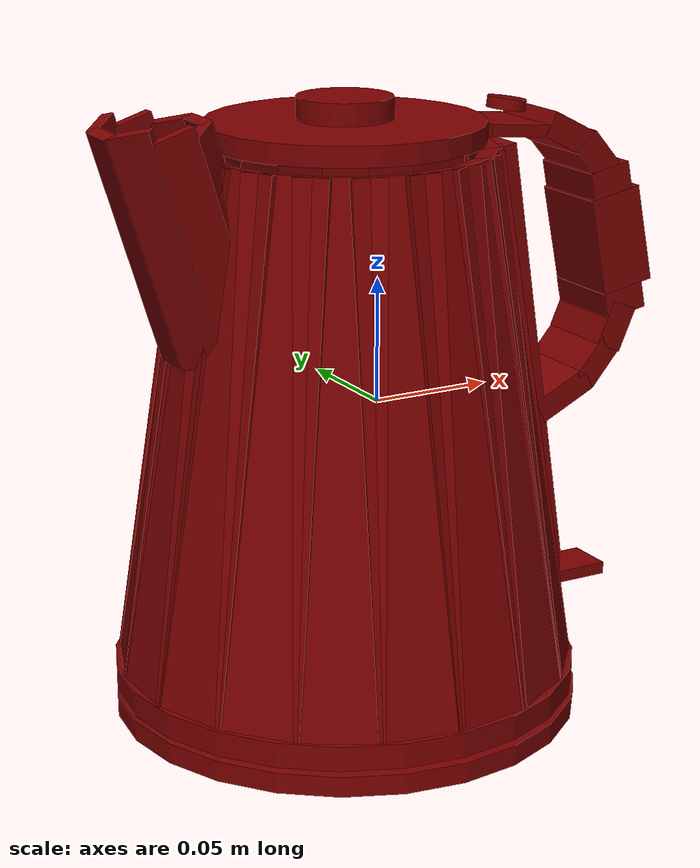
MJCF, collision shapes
<?xml version='1.0' encoding='UTF-8'?>
<mujoco model="model">
  <compiler angle="radian"/>
  <asset>
    <mesh file="visuals/Body001.obj" name="Body001_vis"/>
    <mesh file="visuals/Button001.obj" name="Button001_vis"/>
    <mesh file="visuals/Handle001.obj" name="Handle001_vis"/>
    <mesh file="visuals/Lever001.obj" name="Lever001_vis"/>
    <mesh file="visuals/Lid001.obj" name="Lid001_vis"/>
    <texture file="visuals/T_BC001.png" name="Body001_material" type="2d"/>
    <material name="Body001_material" rgba="1 1 1 1.0" texture="Body001_material" shininess="0.5" specular="0.3103448502657381"/>
    <texture file="visuals/T_BC001.png" name="Handle001_material" type="2d"/>
    <material name="Handle001_material" rgba="1 1 1 1.0" texture="Handle001_material" shininess="0.5" specular="0.3103448502657381"/>
    <texture file="visuals/T_BC001.png" name="Button001_material" type="2d"/>
    <material name="Button001_material" rgba="1 1 1 1.0" texture="Button001_material" shininess="0.5" specular="0.3103448502657381"/>
    <texture file="visuals/T_BC001.png" name="Lever001_material" type="2d"/>
    <material name="Lever001_material" rgba="1 1 1 1.0" texture="Lever001_material" shininess="0.5" specular="0.3103448502657381"/>
    <texture file="visuals/T_BC001.png" name="Lid001_material" type="2d"/>
    <material name="Lid001_material" rgba="1 1 1 1.0" texture="Lid001_material" shininess="0.5" specular="0.3103448502657381"/>
  </asset>
  <default>
    <default class="visual">
      <geom conaffinity="0" contype="0" group="1" type="mesh"/>
    </default>
    <default class="collision">
      <geom group="0" rgba="0.5 0 0 0.5"/>
    </default>
    <default class="spawn">
      <geom group="0" rgba="1 1 1 0.5" contype="0" conaffinity="0"/>
      <site group="0" rgba="1 1 1 0.5"/>
    </default>
    <default class="region">
      <geom group="1" conaffinity="0" contype="0" rgba="0 1 0 0"/>
    </default>
  </default>
  <worldbody>
    <body>
      <body name="object">
        <geom mesh="Body001_vis" type="mesh" solimp="0.998 0.998 0.001" solref="0.001 1" density="100" friction="0.95 0.3 0.1" class="visual" material="Body001_material"/>
        <geom class="collision" type="cylinder" pos="-0.01457547303289175 0.0 -0.11908295750617981" size="0.0935683622956276 0.004105851054191589" quat="1.0 0.0 0.0 0.0"/>
        <body name="Handle001">
          <joint axis="0.0 0.0 1.0" pos="0.0 -1.4901161193847656e-08 0.00021788477897644043" limited="true" name="Handle001_joint" range="0.0 0.1" type="slide" damping="1" frictionloss="1" armature=".01" stiffness="0.05"/>
          <geom mesh="Handle001_vis" type="mesh" solimp="0.998 0.998 0.001" solref="0.001 1" density="100" friction="0.95 0.3 0.1" class="visual" material="Handle001_material"/>
          <geom class="collision" type="cylinder" pos="-0.014966634102165699 0.00020970584591850638 -0.10780871659517288" size="0.09313647449016571 0.005019483156502247" quat="1.0 0.0 0.0 0.0"/>
          <geom class="collision" type="box" pos="0.061717238277196884 3.1286875312730444e-09 0.01329786702990532" size="0.00381870218552649 0.01719263382256031 0.08845608681440353" quat="0.9970765113830566 6.419643119603437e-16 -0.07640993595123291 -1.0266349548260223e-08"/>
          <geom class="collision" type="box" pos="0.05137529596686363 -0.02415994368493557 -0.0005465298891067505" size="0.0038187019526958466 0.01719263195991516 0.10453208535909653" quat="0.9819286465644836 -0.013268446549773216 -0.0752490982413292 -0.1731405258178711"/>
          <geom class="collision" type="box" pos="0.039039477705955505 -0.045380547642707825 -0.0005465298891067505" size="0.00381870218552649 0.01719263382256031 0.10453208535909653" quat="0.9369454383850098 -0.026133734732866287 -0.07180185616016388 -0.3410201966762543"/>
          <geom class="collision" type="box" pos="0.020189721137285233 -0.06110229715704918 -0.0005465298891067505" size="0.00381870218552649 0.01719263195991516 0.10453208535909653" quat="0.8634935617446899 -0.038204967975616455 -0.06617294996976852 -0.4985382556915283"/>
          <geom class="collision" type="box" pos="-0.0029004020616412163 -0.06942891329526901 -0.0005465298891067505" size="0.003818702418357134 0.01719263382256031 0.10453209280967712" quat="0.7638048529624939 -0.049115367233753204 -0.05853341519832611 -0.640908420085907"/>
          <geom class="collision" type="box" pos="-0.027445897459983826 -0.06935609877109528 -0.0005465298891067505" size="0.003818702418357134 0.01719263382256031 0.10453208535909653" quat="0.640908420085907 -0.058533407747745514 -0.04911535978317261 -0.7638049125671387"/>
          <geom class="collision" type="box" pos="-0.05048619583249092 -0.06089260056614876 -0.0005465298891067505" size="0.00381870218552649 0.01719263382256031 0.10453209280967712" quat="0.4985383152961731 -0.06617294996976852 -0.03820497915148735 -0.8634935021400452"/>
          <geom class="collision" type="box" pos="-0.06924232840538025 -0.045059267431497574 -0.0005465298891067505" size="0.00381870218552649 0.01719263382256031 0.10453208535909653" quat="0.34102025628089905 -0.07180184870958328 -0.026133734732866287 -0.9369454383850098"/>
          <geom class="collision" type="box" pos="-0.08145199716091156 -0.02376583404839039 -0.0005465298891067505" size="0.0038187019526958466 0.01719263382256031 0.10453208535909653" quat="0.17314055562019348 -0.07524910569190979 -0.01326845120638609 -0.9819286465644836"/>
          <geom class="collision" type="box" pos="-0.08564256131649017 0.00041939830407500267 -0.0005465298891067505" size="0.00381870218552649 0.01719263382256031 0.10453208535909653" quat="7.533783019653129e-08 -0.07640992850065231 -6.56018928069102e-09 -0.9970765113830566"/>
          <geom class="collision" type="box" pos="-0.08130855858325958 0.024579355493187904 -0.0005465298891067505" size="0.0038187019526958466 0.01719263382256031 0.10453209280967712" quat="0.17314055562019348 0.07524911314249039 -0.01326845120638609 0.9819286465644836"/>
          <geom class="collision" type="box" pos="-0.06897273659706116 0.04579996317625046 -0.0005465298891067505" size="0.00381870218552649 0.01719263382256031 0.10453208535909653" quat="0.34102025628089905 0.07180184125900269 -0.026133736595511436 0.9369454383850098"/>
          <geom class="collision" type="box" pos="-0.050122980028390884 0.061521708965301514 -0.0005465298891067505" size="0.00381870218552649 0.01719263382256031 0.10453209280967712" quat="0.49853822588920593 0.06617295742034912 -0.03820497542619705 0.8634935617446899"/>
          <geom class="collision" type="box" pos="-0.02703285962343216 0.06984832882881165 -0.0005465298891067505" size="0.003818702418357134 0.01719263382256031 0.10453208535909653" quat="0.640908420085907 0.058533407747745514 -0.049115363508462906 0.7638049125671387"/>
          <geom class="collision" type="box" pos="-0.0024873707443475723 0.06977549940347672 -0.0005465298891067505" size="0.003818702418357134 0.01719263382256031 0.10453209280967712" quat="0.7638048529624939 0.0491153709590435 -0.05853341147303581 0.640908420085907"/>
          <geom class="collision" type="box" pos="0.02055296301841736 0.0613119900226593 -0.0005465298891067505" size="0.00381870218552649 0.01719263382256031 0.10453208535909653" quat="0.8634936213493347 0.03820495679974556 -0.06617294996976852 0.4985381066799164"/>
          <geom class="collision" type="box" pos="0.0393090583384037 0.04547867551445961 -0.0005465298891067505" size="0.00381870218552649 0.01719263382256031 0.10453209280967712" quat="0.936945378780365 0.026133758947253227 -0.07180187106132507 0.3410203754901886"/>
          <geom class="collision" type="box" pos="0.0515187568962574 0.024185193702578545 -0.0005465298891067505" size="0.00381870218552649 0.01719263382256031 0.10453208535909653" quat="0.9819287061691284 0.013268419541418552 -0.07524910569190979 0.17314015328884125"/>
          <geom class="collision" type="box" pos="0.09471669793128967 4.000908937484837e-09 0.006806136108934879" size="0.005115010775625706 0.01719263382256031 0.009505491703748703" quat="0.9384635090827942 -8.997803993852568e-15 0.34537839889526367 4.6404654341358764e-08"/>
          <geom class="collision" type="box" pos="0.07727367430925369 -8.843249688084143e-09 0.10240207612514496" size="0.005360691342502832 0.01719263382256031 0.010286534205079079" quat="0.5189869403839111 -4.036503746404846e-15 0.8547821640968323 1.1484754480761694e-07"/>
          <geom class="collision" type="box" pos="0.05407388135790825 -9.294594427444736e-09 0.10576131939888" size="0.002399349818006158 0.01719263382256031 0.013163660652935505" quat="0.6722121238708496 9.631843391443018e-14 0.7403585910797119 9.947366663709545e-08"/>
          <geom class="collision" type="box" pos="0.10418123006820679 -2.6891715521060178e-09 0.05659877508878708" size="0.011472582817077637 0.01719263382256031 0.020186983048915863" quat="0.09888123720884323 -1.770728474872335e-14 0.9950992465019226 1.3370032547754818e-07"/>
          <geom class="collision" type="box" pos="0.09798761457204819 -6.060149271291948e-09 0.08168812841176987" size="0.009207334369421005 0.01719263382256031 0.005582930985838175" quat="0.09888123720884323 -1.770728474872335e-14 0.9950992465019226 1.3370032547754818e-07"/>
          <geom class="collision" type="box" pos="0.10680563747882843 7.241194310836363e-10 0.031194474548101425" size="0.009207334369421005 0.01719263382256031 0.005582930985838175" quat="0.09888123720884323 -1.770728474872335e-14 0.9950992465019226 1.3370032547754818e-07"/>
          <geom class="collision" type="box" pos="0.09135368466377258 -7.428286430410935e-09 0.09187084436416626" size="0.005801137536764145 0.01719263382256031 0.009349396452307701" quat="0.34851792454719543 -5.312973080554657e-15 0.9373021125793457 1.259347754967166e-07"/>
          <geom class="collision" type="box" pos="0.10328873246908188 2.1298656172064057e-09 0.02073184959590435" size="0.00580113660544157 0.01719263382256031 0.009349396452307701" quat="0.2056126892566681 2.1291392856680885e-14 -0.978633463382721 -1.3148800803719496e-07"/>
          <geom class="collision" type="box" pos="0.07845993340015411 5.587666329631702e-09 -0.005003712140023708" size="0.005115011241286993 0.01719263382256031 0.012824085541069508" quat="0.8475775122642517 2.2607379242435425e-15 0.5306715965270996 7.130043400138675e-08"/>
          <geom class="collision" type="box" pos="-0.10047007352113724 2.6317749757254205e-08 0.07262461632490158" size="0.002419065684080124 0.008524363860487938 0.04671775922179222" quat="0.9886778593063354 1.245348073118267e-15 -0.15005366504192352 -2.0161030178655892e-08"/>
          <geom class="collision" type="box" pos="-0.0953395813703537 0.01297021470963955 0.07421866059303284" size="0.0024190652184188366 0.008524364791810513 0.046717751771211624" quat="0.9134191870689392 0.057423051446676254 -0.13863155245780945 -0.37835076451301575"/>
          <geom class="collision" type="box" pos="-0.08295345306396484 0.0183426383882761 0.07806703448295593" size="0.002419065684080124 0.008524363860487938 0.04168763384222984" quat="0.6991008520126343 0.10610394924879074 -0.10610394924879074 -0.6991007924079895"/>
          <geom class="collision" type="box" pos="-0.07056733965873718 0.01297021098434925 0.08191542327404022" size="0.002419065684080124 0.008524363860487938 0.03735519200563431" quat="0.3783506751060486 0.13863147795200348 -0.057423096150159836 -0.913419246673584"/>
          <geom class="collision" type="box" pos="-0.06543684750795364 1.799344850894613e-08 0.08350946754217148" size="0.002419065684080124 0.008524363860487938 0.037355195730924606" quat="7.19476034305444e-08 0.15005366504192352 -6.431428722919463e-09 -0.9886778593063354"/>
          <geom class="collision" type="box" pos="-0.07056733965873718 -0.012970172800123692 0.08191542327404022" size="0.0024190659169107676 0.008524363860487938 0.03735519200563431" quat="0.37835076451301575 -0.13863153755664825 -0.05742301046848297 0.9134191870689392"/>
          <geom class="collision" type="box" pos="-0.08295346796512604 -0.018342601135373116 0.07806703448295593" size="0.002419065684080124 0.008524363860487938 0.04168763384222984" quat="0.6991007328033447 -0.10610395669937134 -0.10610398650169373 0.6991008520126343"/>
          <geom class="collision" type="box" pos="-0.0953395813703537 -0.012970161624252796 0.07421866059303284" size="0.0024190659169107676 0.008524364791810513 0.046717751771211624" quat="0.9134193658828735 -0.05742308869957924 -0.13863152265548706 0.3783503770828247"/>
          <geom class="collision" type="box" pos="0.0747021734714508 1.6811307901321015e-08 -0.0885385274887085" size="0.0038187019526958466 0.01719263382256031 0.01616472564637661" quat="0.999996542930603 2.3758285259517205e-15 0.002638275036588311 3.544768645280527e-10"/>
          <body name="Button001">
            <joint axis="-0.14314477145671844 -1.3836565226910125e-09 -0.9897016882896423" pos="0.05818871408700943 -0.00011676906433422118 0.11362892389297485" limited="true" name="Button001_joint" range="0.0 0.0015" type="slide" damping="1" frictionloss="1" armature=".01" stiffness="0.05" springref="-0.8"/>
            <geom mesh="Button001_vis" type="mesh" solimp="0.998 0.998 0.001" solref="0.001 1" density="100" friction="0.95 0.3 0.1" class="visual" material="Button001_material"/>
            <geom class="collision" type="cylinder" pos="0.05814861133694649 3.0118357807751295e-10 0.11375798285007477" size="0.007815146818757057 0.002271299483254552" quat="0.9974249601364136 -1.139990197611396e-15 0.07171820849180222 9.635977349375935e-09"/>
          </body>
          <body name="Lever001">
            <joint axis="0.0 0.0 -1.0" pos="0.0902499407529831 -0.00011674196139210835 -0.08868788182735443" limited="true" name="Lever001_joint" range="0.0 0.005" type="slide" damping="1" frictionloss="1" armature=".01" stiffness="1" springref="-0.4"/>
            <geom mesh="Lever001_vis" type="mesh" solimp="0.998 0.998 0.001" solref="0.001 1" density="100" friction="0.95 0.3 0.1" class="visual" material="Lever001_material"/>
            <geom class="collision" type="box" pos="0.09391618520021439 1.2113411607117541e-08 -0.08845631778240204" size="0.012590163387358189 0.009862693026661873 0.0025095660239458084" quat="1.0 0.0 0.0 0.0"/>
          </body>
          <body name="Lid001">
            <joint axis="0.0 1.0 0.0" pos="0.03862656652927399 -4.08664345741272e-06 0.11410271376371384" limited="true" name="Lid001_joint" range="0.0 1.5707963267948966" type="hinge" damping="1" frictionloss="1" armature=".01" stiffness="0.05"/>
            <geom mesh="Lid001_vis" type="mesh" solimp="0.998 0.998 0.001" solref="0.001 1" density="100" friction="0.95 0.3 0.1" class="visual" material="Lid001_material"/>
            <geom class="collision" type="cylinder" pos="-0.01457547303289175 0.0 0.10963398963212967" size="0.05424598604440689 0.003984849900007248" quat="1.0 0.0 0.0 0.0"/>
            <geom class="collision" type="cylinder" pos="-0.01457547303289175 0.0 0.11836588382720947" size="0.01871533691883087 0.004324984271079302" quat="1.0 0.0 0.0 0.0"/>
          </body>
        </body>
        <geom class="region" name="reg_main" type="box" pos="-1.862645149230957e-09 -7.450580596923828e-09 0.0" size="0.11549825221300125 0.09109736979007721 0.12277217954397202"/>
      </body>
    </body>
  </worldbody>
  <actuator>
    <motor name="Handle001_joint_actuator" joint="Handle001_joint" gear="10"/>
    <motor name="Button001_joint_actuator" joint="Button001_joint" gear="0.5"/>
    <motor name="Lever001_joint_actuator" joint="Lever001_joint" gear="0.5"/>
    <motor name="Lid001_joint_actuator" joint="Lid001_joint" gear="0.5"/>
  </actuator>
</mujoco>
